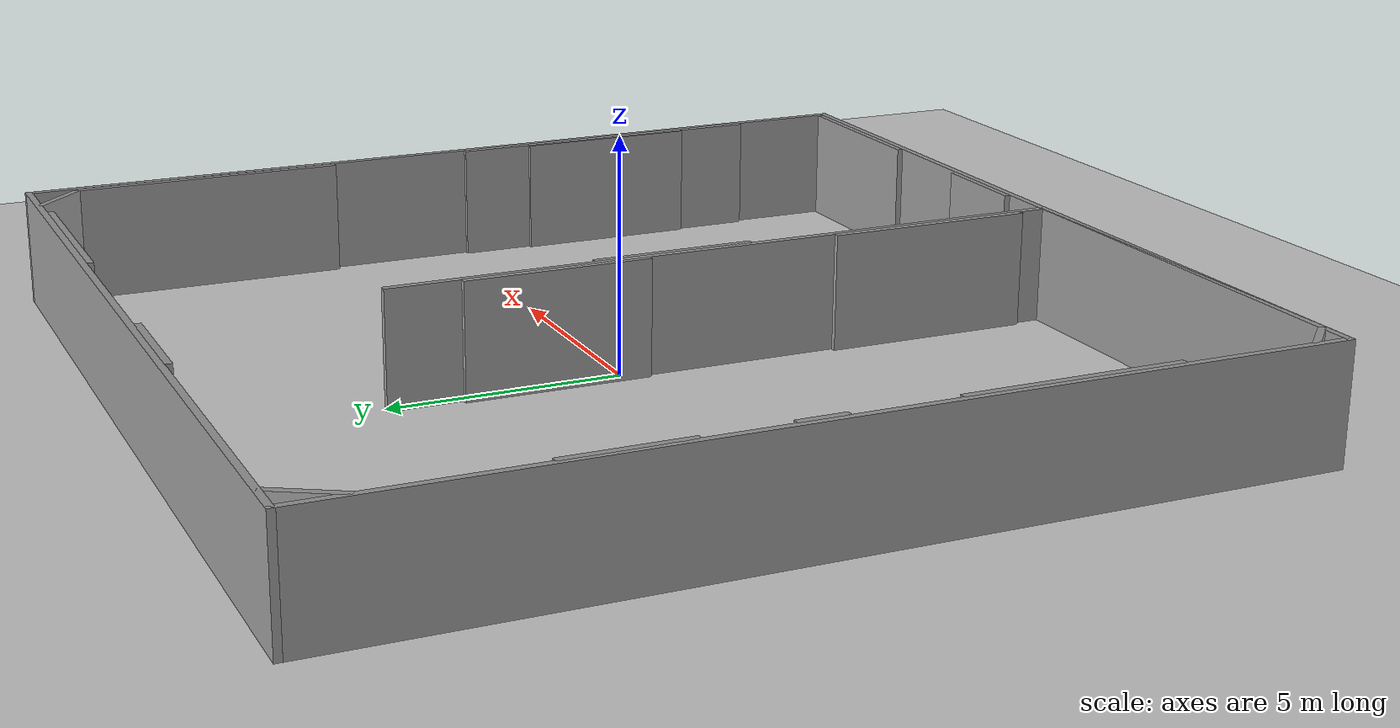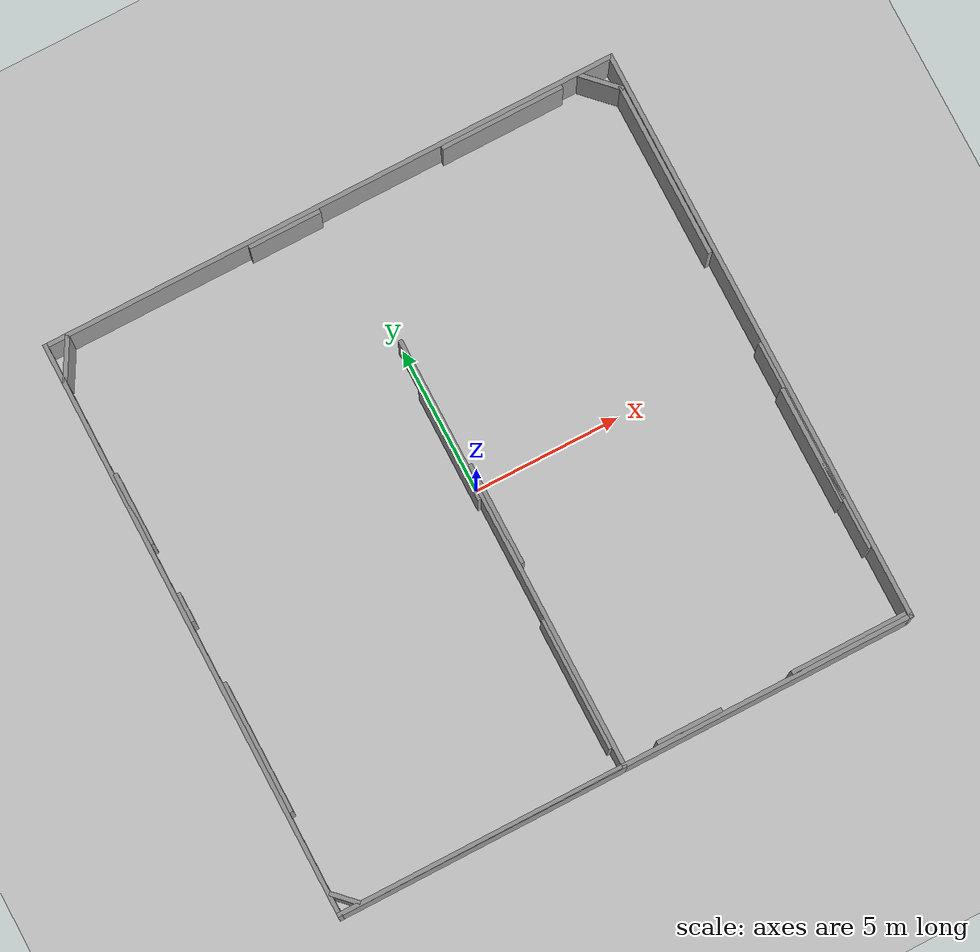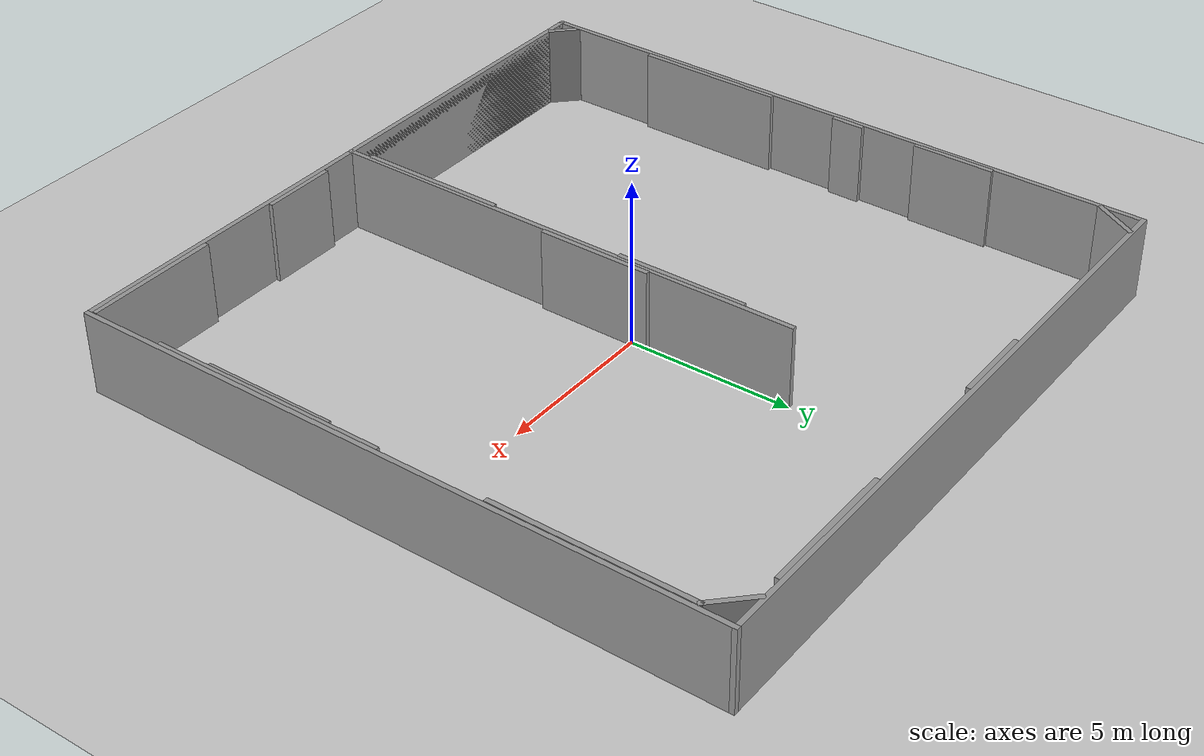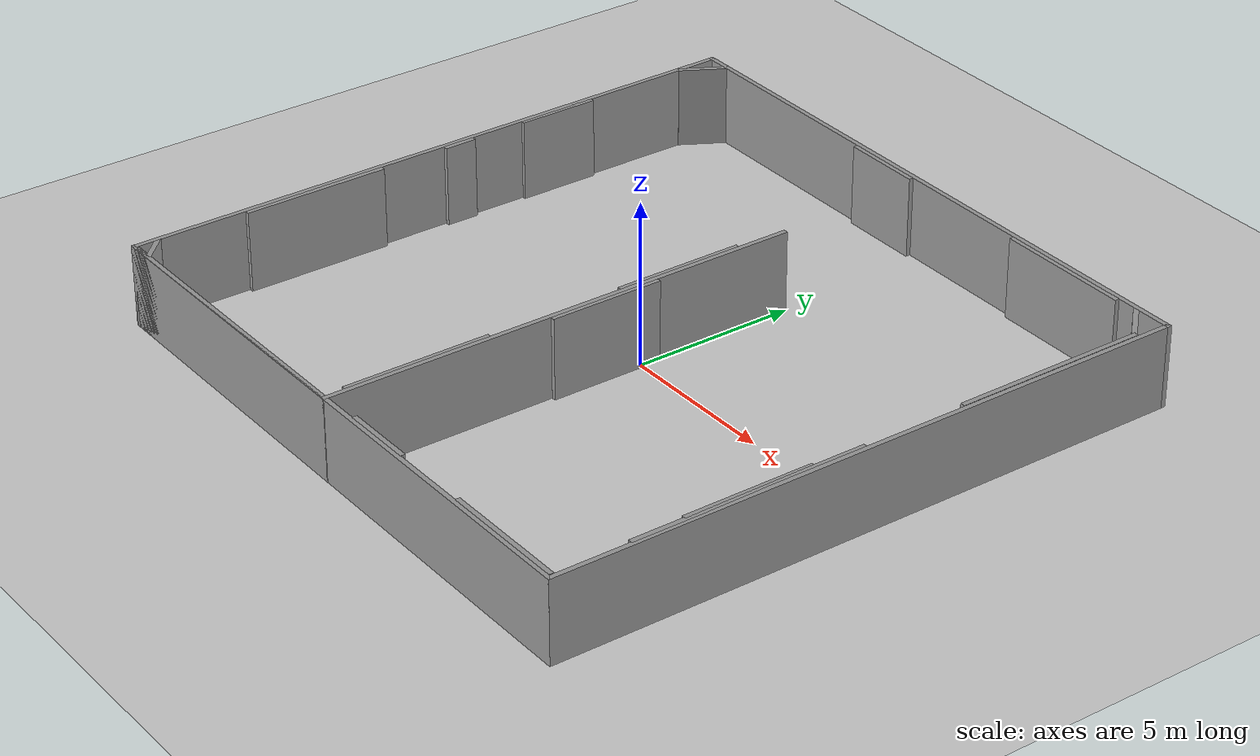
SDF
<sdf version="1.6">
 <world name="default">
  <light name="sun" type="directional">
   <pose>0 0 10 0 -0 0</pose>
   <diffuse>0.8 0.8 0.8 1</diffuse>
   <specular>0.2 0.2 0.2 1</specular>
   <attenuation>
    <range>1000</range>
    <constant>0.9</constant>
    <linear>0.01</linear>
    <quadratic>0.001</quadratic>
   </attenuation>
   <direction>-0.5 0.1 -0.9</direction>
  </light>
  <model name="ground_plane">
   <static>1</static>
   <link name="link">
    <collision name="collision">
     <geometry><plane><normal>0 0 1</normal><size>100 100</size></plane></geometry>
     <surface><friction><ode><mu>100</mu><mu2>50</mu2></ode></friction></surface>
    </collision>
    <visual name="visual">
     <cast_shadows>0</cast_shadows>
     <geometry><plane><normal>0 0 1</normal><size>100 100</size></plane></geometry>
     <material>
      <script><uri>file://media/materials/scripts/gazebo.material</uri><name>Gazebo/Grey</name></script>
     </material>
    </visual>
   </link>
  </model>
  <gravity>0 0 -9.8</gravity>
  <magnetic_field>6e-06 2.3e-05 -4.2e-05</magnetic_field>
  <atmosphere type="adiabatic"/>
  <physics name="default_physics" default="0" type="ode">
   <max_step_size>0.001</max_step_size>
   <real_time_factor>1</real_time_factor>
   <real_time_update_rate>1000</real_time_update_rate>
  </physics>
  <scene><ambient>0.4 0.4 0.4 1</ambient><background>0.7 0.7 0.7 1</background><shadows>1</shadows></scene>
  <spherical_coordinates>
   <surface_model>EARTH_WGS84</surface_model>
   <latitude_deg>0</latitude_deg>
   <longitude_deg>0</longitude_deg>
   <elevation>0</elevation>
   <heading_deg>0</heading_deg>
  </spherical_coordinates>
  <model name="test2">
   <link name="Wall_33">
    <collision name="Wall_33_Collision">
     <geometry><box><size>20 0.15 2.5</size></box></geometry>
     <pose>0 0 1.25 0 -0 0</pose>
    </collision>
    <visual name="Wall_33_Visual">
     <pose>0 0 1.25 0 -0 0</pose>
     <geometry><box><size>20 0.15 2.5</size></box></geometry>
     <material>
      <script><uri>file://media/materials/scripts/gazebo.material</uri><name>Gazebo/Grey</name></script>
      <ambient>1 1 1 1</ambient>
     </material>
     <meta><layer>0</layer></meta>
    </visual>
    <pose>-0 -9.925 0 0 -0 0</pose>
   </link>
   <link name="Wall_34">
    <collision name="Wall_34_Collision">
     <geometry><box><size>20 0.15 2.5</size></box></geometry>
     <pose>0 0 1.25 0 -0 0</pose>
    </collision>
    <visual name="Wall_34_Visual">
     <pose>0 0 1.25 0 -0 0</pose>
     <geometry><box><size>20 0.15 2.5</size></box></geometry>
     <material>
      <script><uri>file://media/materials/scripts/gazebo.material</uri><name>Gazebo/Grey</name></script>
      <ambient>1 1 1 1</ambient>
     </material>
     <meta><layer>0</layer></meta>
    </visual>
    <pose>9.925 0 0 0 -0 1.5708</pose>
   </link>
   <link name="Wall_35">
    <collision name="Wall_35_Collision">
     <geometry><box><size>20 0.15 2.5</size></box></geometry>
     <pose>0 0 1.25 0 -0 0</pose>
    </collision>
    <visual name="Wall_35_Visual">
     <pose>0 0 1.25 0 -0 0</pose>
     <geometry><box><size>20 0.15 2.5</size></box></geometry>
     <material>
      <script><uri>file://media/materials/scripts/gazebo.material</uri><name>Gazebo/Grey</name></script>
      <ambient>1 1 1 1</ambient>
     </material>
     <meta><layer>0</layer></meta>
    </visual>
    <pose>-0 9.925 0 0 -0 3.14159</pose>
   </link>
   <link name="Wall_36">
    <collision name="Wall_36_Collision">
     <geometry><box><size>20 0.15 2.5</size></box></geometry>
     <pose>0 0 1.25 0 -0 0</pose>
    </collision>
    <visual name="Wall_36_Visual">
     <pose>0 0 1.25 0 -0 0</pose>
     <geometry><box><size>20 0.15 2.5</size></box></geometry>
     <material>
      <script><uri>file://media/materials/scripts/gazebo.material</uri><name>Gazebo/Grey</name></script>
      <ambient>1 1 1 1</ambient>
     </material>
     <meta><layer>0</layer></meta>
    </visual>
    <pose>-9.925 0 0 0 -0 -1.5708</pose>
   </link>
   <link name="Wall_38">
    <collision name="Wall_38_Collision">
     <geometry><box><size>10 0.15 2.5</size></box></geometry>
     <pose>0 0 1.25 0 -0 0</pose>
    </collision>
    <visual name="Wall_38_Visual">
     <pose>0 0 1.25 0 -0 0</pose>
     <geometry><box><size>10 0.15 2.5</size></box></geometry>
     <material>
      <script><uri>file://media/materials/scripts/gazebo.material</uri><name>Gazebo/Grey</name></script>
      <ambient>1 1 1 1</ambient>
     </material>
     <meta><layer>0</layer></meta>
    </visual>
    <pose>-5 -9.925 0 0 -0 0</pose>
   </link>
   <link name="Wall_39">
    <collision name="Wall_39_Collision">
     <geometry><box><size>15 0.15 2.5</size></box></geometry>
     <pose>0 0 1.25 0 -0 0</pose>
    </collision>
    <visual name="Wall_39_Visual">
     <pose>0 0 1.25 0 -0 0</pose>
     <geometry><box><size>15 0.15 2.5</size></box></geometry>
     <material>
      <script><uri>file://media/materials/scripts/gazebo.material</uri><name>Gazebo/Grey</name></script>
      <ambient>1 1 1 1</ambient>
     </material>
     <meta><layer>0</layer></meta>
    </visual>
    <pose>-0.075 -2.5 0 0 -0 1.5708</pose>
   </link>
   <link name="Wall_42">
    <collision name="Wall_42_Collision">
     <geometry><box><size>4.5 0.15 2.5</size></box></geometry>
     <pose>0 0 1.25 0 -0 0</pose>
    </collision>
    <visual name="Wall_42_Visual">
     <pose>0 0 1.25 0 -0 0</pose>
     <geometry><box><size>4.5 0.15 2.5</size></box></geometry>
     <material>
      <script><uri>file://media/materials/scripts/gazebo.material</uri><name>Gazebo/Grey</name></script>
      <ambient>1 1 1 1</ambient>
     </material>
     <meta><layer>0</layer></meta>
    </visual>
    <pose>-9.792 -4.21217 0 0 -0 1.5708</pose>
   </link>
   <link name="Wall_44">
    <collision name="Wall_44_Collision">
     <geometry><box><size>2.5 0.15 2.5</size></box></geometry>
     <pose>0 0 1.25 0 -0 0</pose>
    </collision>
    <visual name="Wall_44_Visual">
     <pose>0 0 1.25 0 -0 0</pose>
     <geometry><box><size>2.5 0.15 2.5</size></box></geometry>
     <material>
      <script><uri>file://media/materials/scripts/gazebo.material</uri><name>Gazebo/Grey</name></script>
      <ambient>1 1 1 1</ambient>
     </material>
     <meta><layer>0</layer></meta>
    </visual>
    <pose>-9.8186 4.1245 0 0 -0 1.5708</pose>
   </link>
   <link name="Wall_46">
    <collision name="Wall_46_Collision">
     <geometry><box><size>1 0.15 2.5</size></box></geometry>
     <pose>0 0 1.25 0 -0 0</pose>
    </collision>
    <visual name="Wall_46_Visual">
     <pose>0 0 1.25 0 -0 0</pose>
     <geometry><box><size>1 0.15 2.5</size></box></geometry>
     <material>
      <script><uri>file://media/materials/scripts/gazebo.material</uri><name>Gazebo/Grey</name></script>
      <ambient>1 1 1 1</ambient>
     </material>
     <meta><layer>0</layer></meta>
    </visual>
    <pose>-9.792 0.661276 0 0 -0 1.5708</pose>
   </link>
   <link name="Wall_48">
    <collision name="Wall_48_Collision">
     <geometry><box><size>4.5 0.15 2.5</size></box></geometry>
     <pose>0 0 1.25 0 -0 0</pose>
    </collision>
    <visual name="Wall_48_Visual">
     <pose>0 0 1.25 0 -0 0</pose>
     <geometry><box><size>4.5 0.15 2.5</size></box></geometry>
     <material>
      <script><uri>file://media/materials/scripts/gazebo.material</uri><name>Gazebo/Grey</name></script>
      <ambient>1 1 1 1</ambient>
     </material>
     <meta><layer>0</layer></meta>
    </visual>
    <pose>-0.189327 -7.03179 0 0 -0 1.5708</pose>
   </link>
   <link name="Wall_50">
    <collision name="Wall_50_Collision">
     <geometry><box><size>1 0.15 2.5</size></box></geometry>
     <pose>0 0 1.25 0 -0 0</pose>
    </collision>
    <visual name="Wall_50_Visual">
     <pose>0 0 1.25 0 -0 0</pose>
     <geometry><box><size>1 0.15 2.5</size></box></geometry>
     <material>
      <script><uri>file://media/materials/scripts/gazebo.material</uri><name>Gazebo/Grey</name></script>
      <ambient>1 1 1 1</ambient>
     </material>
     <meta><layer>0</layer></meta>
    </visual>
    <pose>-9.54468 -9.56052 0 0 -0 -0.785398</pose>
   </link>
   <link name="Wall_52">
    <collision name="Wall_52_Collision">
     <geometry><box><size>1.5 0.15 2.5</size></box></geometry>
     <pose>0 0 1.25 0 -0 0</pose>
    </collision>
    <visual name="Wall_52_Visual">
     <pose>0 0 1.25 0 -0 0</pose>
     <geometry><box><size>1.5 0.15 2.5</size></box></geometry>
     <material>
      <script><uri>file://media/materials/scripts/gazebo.material</uri><name>Gazebo/Grey</name></script>
      <ambient>1 1 1 1</ambient>
     </material>
     <meta><layer>0</layer></meta>
    </visual>
    <pose>-9.5343 9.27971 0 0 -0 1.0472</pose>
   </link>
   <link name="Wall_54">
    <collision name="Wall_54_Collision">
     <geometry><box><size>4 0.15 2.5</size></box></geometry>
     <pose>0 0 1.25 0 -0 0</pose>
    </collision>
    <visual name="Wall_54_Visual">
     <pose>0 0 1.25 0 -0 0</pose>
     <geometry><box><size>4 0.15 2.5</size></box></geometry>
     <material>
      <script><uri>file://media/materials/scripts/gazebo.material</uri><name>Gazebo/Grey</name></script>
      <ambient>1 1 1 1</ambient>
     </material>
     <meta><layer>0</layer></meta>
    </visual>
    <pose>-0.189327 1.41647 0 0 -0 1.5708</pose>
   </link>
   <link name="Wall_56">
    <collision name="Wall_56_Collision">
     <geometry><box><size>2.5 0.15 2.5</size></box></geometry>
     <pose>0 0 1.25 0 -0 0</pose>
    </collision>
    <visual name="Wall_56_Visual">
     <pose>0 0 1.25 0 -0 0</pose>
     <geometry><box><size>2.5 0.15 2.5</size></box></geometry>
     <material>
      <script><uri>file://media/materials/scripts/gazebo.material</uri><name>Gazebo/Grey</name></script>
      <ambient>1 1 1 1</ambient>
     </material>
     <meta><layer>0</layer></meta>
    </visual>
    <pose>-1.64775 9.78575 0 0 -0 0</pose>
   </link>
   <link name="Wall_58">
    <collision name="Wall_58_Collision">
     <geometry><box><size>4.25 0.15 2.5</size></box></geometry>
     <pose>0 0 1.25 0 -0 0</pose>
    </collision>
    <visual name="Wall_58_Visual">
     <pose>0 0 1.25 0 -0 0</pose>
     <geometry><box><size>4.25 0.15 2.5</size></box></geometry>
     <material>
      <script><uri>file://media/materials/scripts/gazebo.material</uri><name>Gazebo/Grey</name></script>
      <ambient>1 1 1 1</ambient>
     </material>
     <meta><layer>0</layer></meta>
    </visual>
    <pose>6.0103 9.78575 0 0 -0 0</pose>
   </link>
   <link name="Wall_60">
    <collision name="Wall_60_Collision">
     <geometry><box><size>1.5 0.15 2.5</size></box></geometry>
     <pose>0 0 1.25 0 -0 0</pose>
    </collision>
    <visual name="Wall_60_Visual">
     <pose>0 0 1.25 0 -0 0</pose>
     <geometry><box><size>1.5 0.15 2.5</size></box></geometry>
     <material>
      <script><uri>file://media/materials/scripts/gazebo.material</uri><name>Gazebo/Grey</name></script>
      <ambient>1 1 1 1</ambient>
     </material>
     <meta><layer>0</layer></meta>
    </visual>
    <pose>9.27884 9.36165 0 0 -0 -0.785398</pose>
   </link>
   <link name="Wall_62">
    <collision name="Wall_62_Collision">
     <geometry><box><size>6 0.15 2.5</size></box></geometry>
     <pose>0 0 1.25 0 -0 0</pose>
    </collision>
    <visual name="Wall_62_Visual">
     <pose>0 0 1.25 0 -0 0</pose>
     <geometry><box><size>6 0.15 2.5</size></box></geometry>
     <material>
      <script><uri>file://media/materials/scripts/gazebo.material</uri><name>Gazebo/Grey</name></script>
      <ambient>1 1 1 1</ambient>
     </material>
     <meta><layer>0</layer></meta>
    </visual>
    <pose>9.75613 5.95935 0 0 -0 -1.5708</pose>
   </link>
   <link name="Wall_64">
    <collision name="Wall_64_Collision">
     <geometry><box><size>7.25 0.15 2.5</size></box></geometry>
     <pose>0 0 1.25 0 -0 0</pose>
    </collision>
    <visual name="Wall_64_Visual">
     <pose>0 0 1.25 0 -0 0</pose>
     <geometry><box><size>7.25 0.15 2.5</size></box></geometry>
     <material>
      <script><uri>file://media/materials/scripts/gazebo.material</uri><name>Gazebo/Grey</name></script>
      <ambient>1 1 1 1</ambient>
     </material>
     <meta><layer>0</layer></meta>
    </visual>
    <pose>9.81235 -3.87233 0 0 -0 -1.5708</pose>
   </link>
   <link name="Wall_66">
    <collision name="Wall_66_Collision">
     <geometry><box><size>4 0.15 2.5</size></box></geometry>
     <pose>0 0 1.25 0 -0 0</pose>
    </collision>
    <visual name="Wall_66_Visual">
     <pose>0 0 1.25 0 -0 0</pose>
     <geometry><box><size>4 0.15 2.5</size></box></geometry>
     <material>
      <script><uri>file://media/materials/scripts/gazebo.material</uri><name>Gazebo/Grey</name></script>
      <ambient>1 1 1 1</ambient>
     </material>
     <meta><layer>0</layer></meta>
    </visual>
    <pose>9.73255 -3.84334 0 0 -0 -1.5708</pose>
   </link>
   <link name="Wall_68">
    <collision name="Wall_68_Collision">
     <geometry><box><size>3.5 0.15 2.5</size></box></geometry>
     <pose>0 0 1.25 0 -0 0</pose>
    </collision>
    <visual name="Wall_68_Visual">
     <pose>0 0 1.25 0 -0 0</pose>
     <geometry><box><size>3.5 0.15 2.5</size></box></geometry>
     <material>
      <script><uri>file://media/materials/scripts/gazebo.material</uri><name>Gazebo/Grey</name></script>
      <ambient>1 1 1 1</ambient>
     </material>
     <meta><layer>0</layer></meta>
    </visual>
    <pose>0.050074 -1.19932 0 0 -0 -1.5708</pose>
   </link>
   <link name="Wall_70">
    <collision name="Wall_70_Collision">
     <geometry><box><size>2.25 0.15 2.5</size></box></geometry>
     <pose>0 0 1.25 0 -0 0</pose>
    </collision>
    <visual name="Wall_70_Visual">
     <pose>0 0 1.25 0 -0 0</pose>
     <geometry><box><size>2.25 0.15 2.5</size></box></geometry>
     <material>
      <script><uri>file://media/materials/scripts/gazebo.material</uri><name>Gazebo/Grey</name></script>
      <ambient>1 1 1 1</ambient>
     </material>
     <meta><layer>0</layer></meta>
    </visual>
    <pose>2.27048 -9.792 0 0 -0 0</pose>
   </link>
   <link name="Wall_72">
    <collision name="Wall_72_Collision">
     <geometry><box><size>4 0.15 2.5</size></box></geometry>
     <pose>0 0 1.25 0 -0 0</pose>
    </collision>
    <visual name="Wall_72_Visual">
     <pose>0 0 1.25 0 -0 0</pose>
     <geometry><box><size>4 0.15 2.5</size></box></geometry>
     <material>
      <script><uri>file://media/materials/scripts/gazebo.material</uri><name>Gazebo/Grey</name></script>
      <ambient>1 1 1 1</ambient>
     </material>
     <meta><layer>0</layer></meta>
    </visual>
    <pose>7.82712 -9.792 0 0 -0 0</pose>
   </link>
   <static>1</static>
  </model>
 </world>
</sdf>
